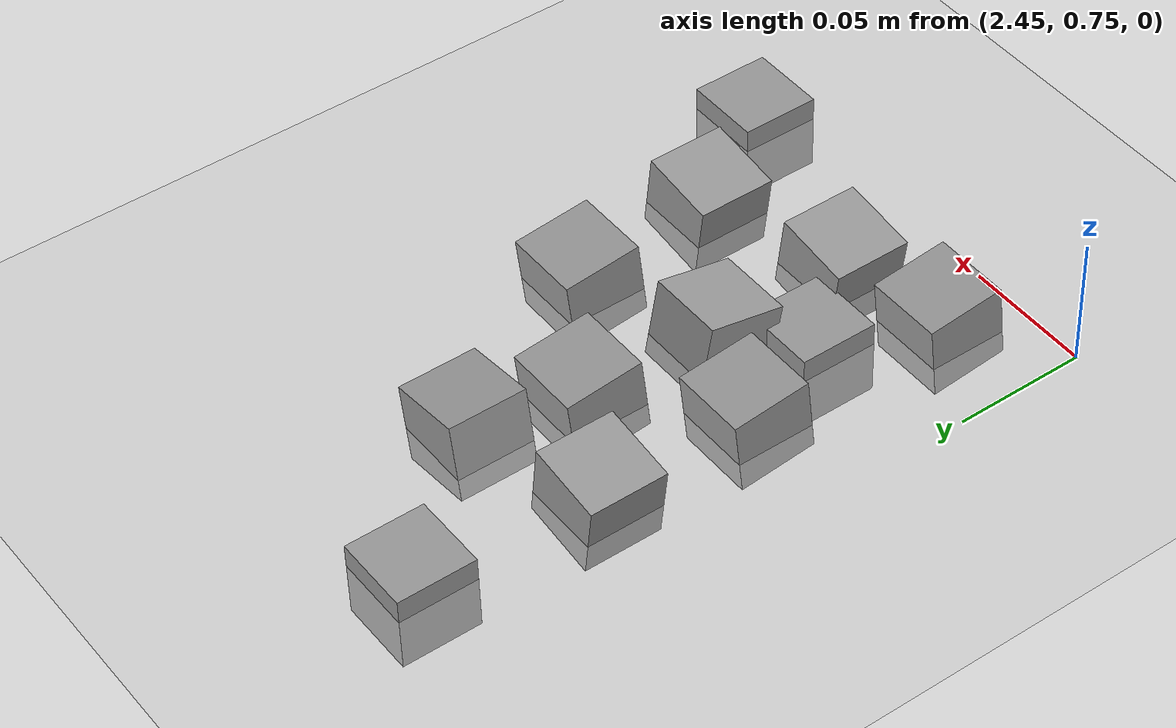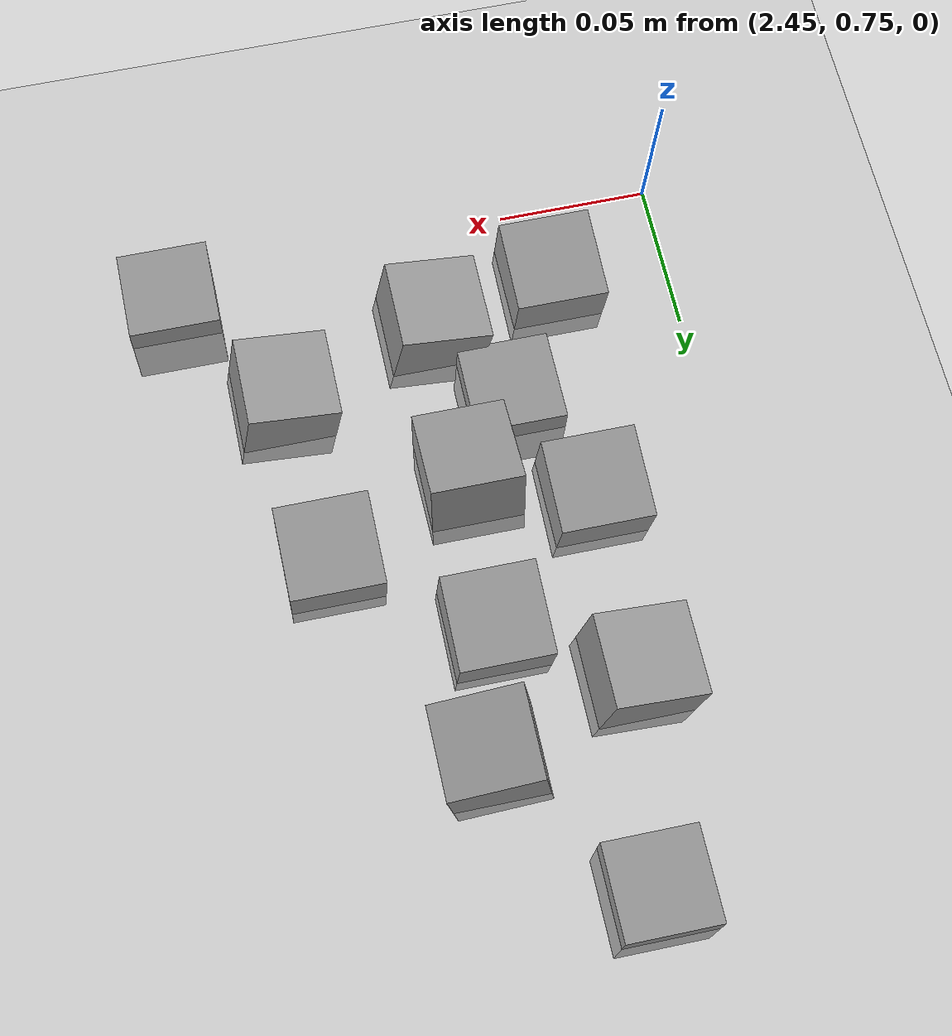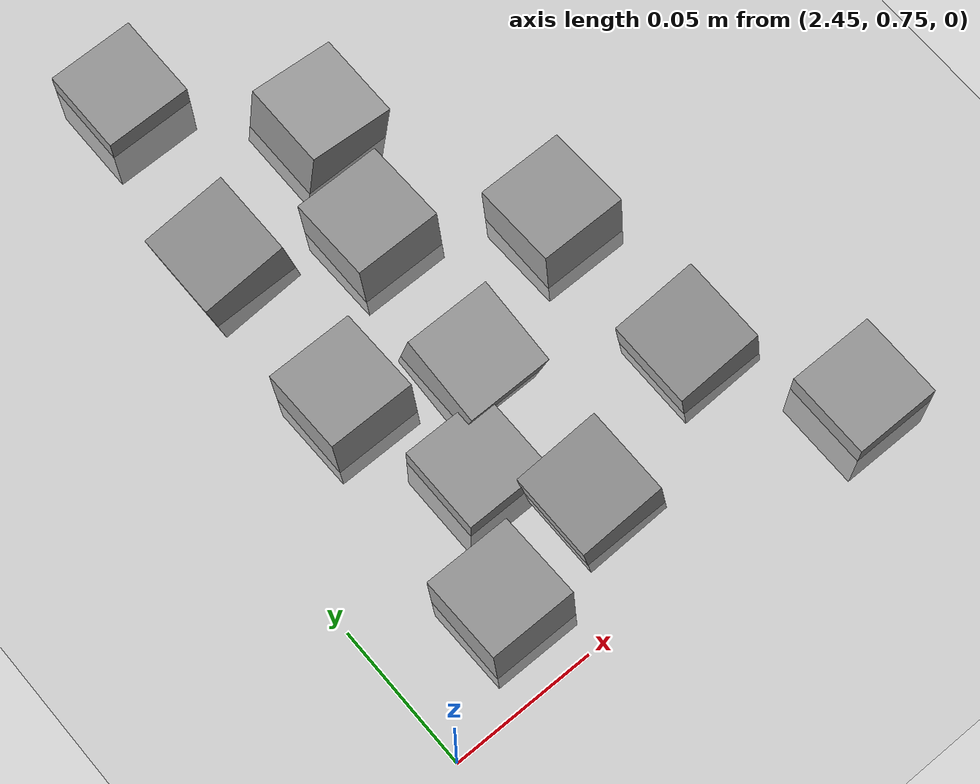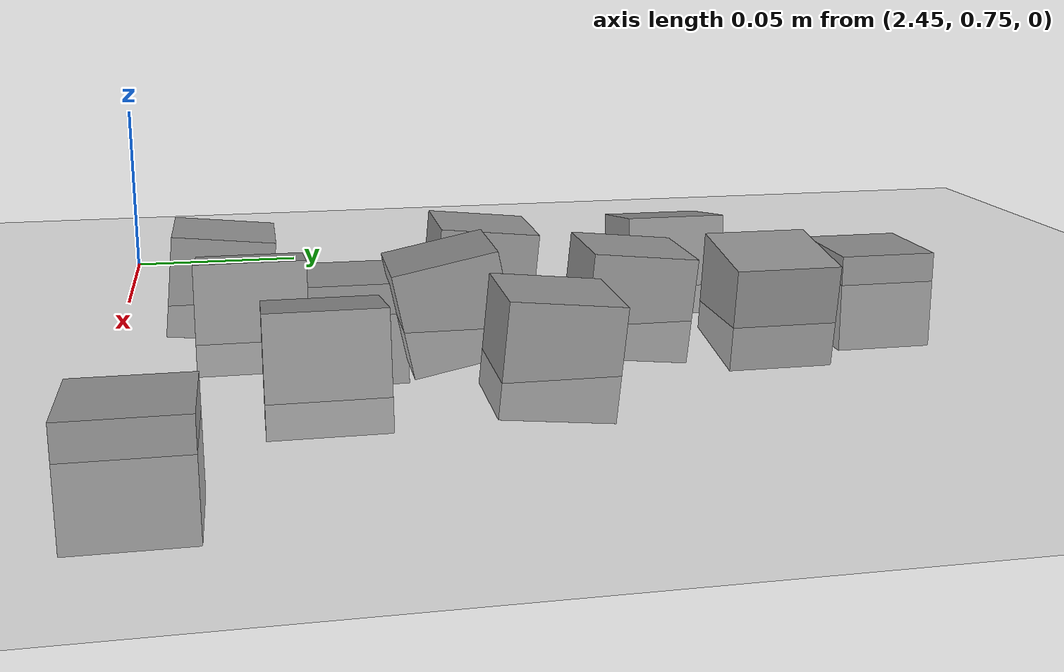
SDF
<sdf version="1.7">
 <world name="default">
  <model name="ground_plane">
   <static>1</static>
   <link name="link">
    <collision name="collision">
     <geometry><plane><normal>0 0 1</normal><size>100 100</size></plane></geometry>
     <surface><friction><ode><mu>100</mu><mu2>50</mu2></ode></friction></surface>
    </collision>
    <visual name="visual">
     <cast_shadows>0</cast_shadows>
     <geometry><plane><normal>0 0 1</normal><size>100 100</size></plane></geometry>
     <material>
      <script><uri>file://media/materials/scripts/gazebo.material</uri><name>Gazebo/Grey</name></script>
     </material>
    </visual>
   </link>
  </model>
  <model name="stone_road_8">
   <link name="link_0_clone_2_clone_2_clone">
    <inertial>
     <mass>1</mass>
     <inertia>
      <ixx>0.166667</ixx>
      <ixy>0</ixy>
      <ixz>0</ixz>
      <iyy>0.166667</iyy>
      <iyz>0</iyz>
      <izz>0.166667</izz>
     </inertia>
    </inertial>
    <pose>0.189059 0.051135 0.003778 0 -0.15 0</pose>
    <kinematic>1</kinematic>
    <visual name="visual">
     <geometry><box><size>0.03 0.03 0.03</size></box></geometry>
     <material>
      <lighting>1</lighting>
      <script><uri>file://media/materials/scripts/gazebo.material</uri><name>Gazebo/Grey</name></script>
      <shader type="pixel"><normal_map>__default__</normal_map></shader>
      <ambient>0.3 0.3 0.3 1</ambient>
      <diffuse>0.7 0.7 0.7 1</diffuse>
      <specular>0.01 0.01 0.01 1</specular>
      <emissive>0 0 0 1</emissive>
     </material>
    </visual>
    <collision name="collision">
     <geometry><box><size>0.03 0.03 0.03</size></box></geometry>
     <surface>
      <friction>
       <ode><mu>1</mu><mu2>1</mu2><fdir1>0 0 0</fdir1><slip1>0</slip1><slip2>0</slip2></ode>
       <torsional>
        <coefficient>1</coefficient>
        <patch_radius>0</patch_radius>
        <surface_radius>0</surface_radius>
        <use_patch_radius>1</use_patch_radius>
        <ode><slip>0</slip></ode>
       </torsional>
      </friction>
      <bounce><restitution_coefficient>0</restitution_coefficient><threshold>1e+06</threshold></bounce>
      <contact>
       <collide_without_contact>0</collide_without_contact>
       <collide_without_contact_bitmask>1</collide_without_contact_bitmask>
       <collide_bitmask>1</collide_bitmask>
       <ode>
        <soft_cfm>0</soft_cfm>
        <soft_erp>0.2</soft_erp>
        <kp>1e+13</kp>
        <kd>1</kd>
        <max_vel>0.01</max_vel>
        <min_depth>0</min_depth>
       </ode>
       <bullet>
        <split_impulse>1</split_impulse>
        <split_impulse_penetration_threshold>-0.01</split_impulse_penetration_threshold>
        <soft_cfm>0</soft_cfm>
        <soft_erp>0.2</soft_erp>
        <kp>1e+13</kp>
        <kd>1</kd>
       </bullet>
      </contact>
     </surface>
    </collision>
   </link>
   <link name="link_0_clone_2_clone_2_clone_10">
    <inertial>
     <mass>1</mass>
     <inertia>
      <ixx>0.166667</ixx>
      <ixy>0</ixy>
      <ixz>0</ixz>
      <iyy>0.166667</iyy>
      <iyz>0</iyz>
      <izz>0.166667</izz>
     </inertia>
    </inertial>
    <pose>0.09869 0.163436 0.003778 0 -0.15 0</pose>
    <kinematic>1</kinematic>
    <visual name="visual">
     <geometry><box><size>0.03 0.03 0.03</size></box></geometry>
     <material>
      <lighting>1</lighting>
      <script><uri>file://media/materials/scripts/gazebo.material</uri><name>Gazebo/Grey</name></script>
      <shader type="pixel"><normal_map>__default__</normal_map></shader>
      <ambient>0.3 0.3 0.3 1</ambient>
      <diffuse>0.7 0.7 0.7 1</diffuse>
      <specular>0.01 0.01 0.01 1</specular>
      <emissive>0 0 0 1</emissive>
     </material>
    </visual>
    <collision name="collision">
     <geometry><box><size>0.03 0.03 0.03</size></box></geometry>
     <surface>
      <friction>
       <ode><mu>1</mu><mu2>1</mu2><fdir1>0 0 0</fdir1><slip1>0</slip1><slip2>0</slip2></ode>
       <torsional>
        <coefficient>1</coefficient>
        <patch_radius>0</patch_radius>
        <surface_radius>0</surface_radius>
        <use_patch_radius>1</use_patch_radius>
        <ode><slip>0</slip></ode>
       </torsional>
      </friction>
      <bounce><restitution_coefficient>0</restitution_coefficient><threshold>1e+06</threshold></bounce>
      <contact>
       <collide_without_contact>0</collide_without_contact>
       <collide_without_contact_bitmask>1</collide_without_contact_bitmask>
       <collide_bitmask>1</collide_bitmask>
       <ode>
        <soft_cfm>0</soft_cfm>
        <soft_erp>0.2</soft_erp>
        <kp>1e+13</kp>
        <kd>1</kd>
        <max_vel>0.01</max_vel>
        <min_depth>0</min_depth>
       </ode>
       <bullet>
        <split_impulse>1</split_impulse>
        <split_impulse_penetration_threshold>-0.01</split_impulse_penetration_threshold>
        <soft_cfm>0</soft_cfm>
        <soft_erp>0.2</soft_erp>
        <kp>1e+13</kp>
        <kd>1</kd>
       </bullet>
      </contact>
     </surface>
    </collision>
   </link>
   <link name="link_0_clone_2_clone_2_clone_13_clone">
    <inertial>
     <mass>1</mass>
     <inertia>
      <ixx>0.166667</ixx>
      <ixy>0</ixy>
      <ixz>0</ixz>
      <iyy>0.166667</iyy>
      <iyz>0</iyz>
      <izz>0.166667</izz>
     </inertia>
    </inertial>
    <pose>0.138846 0.140956 0.003778 -0.1 0 0</pose>
    <kinematic>1</kinematic>
    <visual name="visual">
     <geometry><box><size>0.03 0.03 0.03</size></box></geometry>
     <material>
      <lighting>1</lighting>
      <script><uri>file://media/materials/scripts/gazebo.material</uri><name>Gazebo/Grey</name></script>
      <shader type="pixel"><normal_map>__default__</normal_map></shader>
      <ambient>0.3 0.3 0.3 1</ambient>
      <diffuse>0.7 0.7 0.7 1</diffuse>
      <specular>0.01 0.01 0.01 1</specular>
      <emissive>0 0 0 1</emissive>
     </material>
    </visual>
    <collision name="collision">
     <geometry><box><size>0.03 0.03 0.03</size></box></geometry>
     <surface>
      <friction>
       <ode><mu>1</mu><mu2>1</mu2><fdir1>0 0 0</fdir1><slip1>0</slip1><slip2>0</slip2></ode>
       <torsional>
        <coefficient>1</coefficient>
        <patch_radius>0</patch_radius>
        <surface_radius>0</surface_radius>
        <use_patch_radius>1</use_patch_radius>
        <ode><slip>0</slip></ode>
       </torsional>
      </friction>
      <bounce><restitution_coefficient>0</restitution_coefficient><threshold>1e+06</threshold></bounce>
      <contact>
       <collide_without_contact>0</collide_without_contact>
       <collide_without_contact_bitmask>1</collide_without_contact_bitmask>
       <collide_bitmask>1</collide_bitmask>
       <ode>
        <soft_cfm>0</soft_cfm>
        <soft_erp>0.2</soft_erp>
        <kp>1e+13</kp>
        <kd>1</kd>
        <max_vel>0.01</max_vel>
        <min_depth>0</min_depth>
       </ode>
       <bullet>
        <split_impulse>1</split_impulse>
        <split_impulse_penetration_threshold>-0.01</split_impulse_penetration_threshold>
        <soft_cfm>0</soft_cfm>
        <soft_erp>0.2</soft_erp>
        <kp>1e+13</kp>
        <kd>1</kd>
       </bullet>
      </contact>
     </surface>
    </collision>
   </link>
   <link name="link_0_clone_2_clone_2_clone_13_clone_clone">
    <inertial>
     <mass>1</mass>
     <inertia>
      <ixx>0.166667</ixx>
      <ixy>0</ixy>
      <ixz>0</ixz>
      <iyy>0.166667</iyy>
      <iyz>0</iyz>
      <izz>0.166667</izz>
     </inertia>
    </inertial>
    <pose>0.184456 0.108712 0.003778 -0.1 0 0</pose>
    <kinematic>1</kinematic>
    <visual name="visual">
     <geometry><box><size>0.03 0.03 0.03</size></box></geometry>
     <material>
      <lighting>1</lighting>
      <script><uri>file://media/materials/scripts/gazebo.material</uri><name>Gazebo/Grey</name></script>
      <shader type="pixel"><normal_map>__default__</normal_map></shader>
      <ambient>0.3 0.3 0.3 1</ambient>
      <diffuse>0.7 0.7 0.7 1</diffuse>
      <specular>0.01 0.01 0.01 1</specular>
      <emissive>0 0 0 1</emissive>
     </material>
    </visual>
    <collision name="collision">
     <geometry><box><size>0.03 0.03 0.03</size></box></geometry>
     <surface>
      <friction>
       <ode><mu>1</mu><mu2>1</mu2><fdir1>0 0 0</fdir1><slip1>0</slip1><slip2>0</slip2></ode>
       <torsional>
        <coefficient>1</coefficient>
        <patch_radius>0</patch_radius>
        <surface_radius>0</surface_radius>
        <use_patch_radius>1</use_patch_radius>
        <ode><slip>0</slip></ode>
       </torsional>
      </friction>
      <bounce><restitution_coefficient>0</restitution_coefficient><threshold>1e+06</threshold></bounce>
      <contact>
       <collide_without_contact>0</collide_without_contact>
       <collide_without_contact_bitmask>1</collide_without_contact_bitmask>
       <collide_bitmask>1</collide_bitmask>
       <ode>
        <soft_cfm>0</soft_cfm>
        <soft_erp>0.2</soft_erp>
        <kp>1e+13</kp>
        <kd>1</kd>
        <max_vel>0.01</max_vel>
        <min_depth>0</min_depth>
       </ode>
       <bullet>
        <split_impulse>1</split_impulse>
        <split_impulse_penetration_threshold>-0.01</split_impulse_penetration_threshold>
        <soft_cfm>0</soft_cfm>
        <soft_erp>0.2</soft_erp>
        <kp>1e+13</kp>
        <kd>1</kd>
       </bullet>
      </contact>
     </surface>
    </collision>
   </link>
   <link name="link_0_clone_2_clone_2_clone_13_clone_clone_0">
    <inertial>
     <mass>1</mass>
     <inertia>
      <ixx>0.166667</ixx>
      <ixy>0</ixy>
      <ixz>0</ixz>
      <iyy>0.166667</iyy>
      <iyz>0</iyz>
      <izz>0.166667</izz>
     </inertia>
    </inertial>
    <pose>0.094072 0.02539 0.003778 -0.1 0 0</pose>
    <kinematic>1</kinematic>
    <visual name="visual">
     <geometry><box><size>0.03 0.03 0.03</size></box></geometry>
     <material>
      <lighting>1</lighting>
      <script><uri>file://media/materials/scripts/gazebo.material</uri><name>Gazebo/Grey</name></script>
      <shader type="pixel"><normal_map>__default__</normal_map></shader>
      <ambient>0.3 0.3 0.3 1</ambient>
      <diffuse>0.7 0.7 0.7 1</diffuse>
      <specular>0.01 0.01 0.01 1</specular>
      <emissive>0 0 0 1</emissive>
     </material>
    </visual>
    <collision name="collision">
     <geometry><box><size>0.03 0.03 0.03</size></box></geometry>
     <surface>
      <friction>
       <ode><mu>1</mu><mu2>1</mu2><fdir1>0 0 0</fdir1><slip1>0</slip1><slip2>0</slip2></ode>
       <torsional>
        <coefficient>1</coefficient>
        <patch_radius>0</patch_radius>
        <surface_radius>0</surface_radius>
        <use_patch_radius>1</use_patch_radius>
        <ode><slip>0</slip></ode>
       </torsional>
      </friction>
      <bounce><restitution_coefficient>0</restitution_coefficient><threshold>1e+06</threshold></bounce>
      <contact>
       <collide_without_contact>0</collide_without_contact>
       <collide_without_contact_bitmask>1</collide_without_contact_bitmask>
       <collide_bitmask>1</collide_bitmask>
       <ode>
        <soft_cfm>0</soft_cfm>
        <soft_erp>0.2</soft_erp>
        <kp>1e+13</kp>
        <kd>1</kd>
        <max_vel>0.01</max_vel>
        <min_depth>0</min_depth>
       </ode>
       <bullet>
        <split_impulse>1</split_impulse>
        <split_impulse_penetration_threshold>-0.01</split_impulse_penetration_threshold>
        <soft_cfm>0</soft_cfm>
        <soft_erp>0.2</soft_erp>
        <kp>1e+13</kp>
        <kd>1</kd>
       </bullet>
      </contact>
     </surface>
    </collision>
   </link>
   <link name="link_0_clone_2_clone_2_clone_13_clone_clone_1">
    <inertial>
     <mass>1</mass>
     <inertia>
      <ixx>0.166667</ixx>
      <ixy>0</ixy>
      <ixz>0</ixz>
      <iyy>0.166667</iyy>
      <iyz>0</iyz>
      <izz>0.166667</izz>
     </inertia>
    </inertial>
    <pose>0.098415 0.103772 0.003778 -0.1 0 0</pose>
    <kinematic>1</kinematic>
    <visual name="visual">
     <geometry><box><size>0.03 0.03 0.03</size></box></geometry>
     <material>
      <lighting>1</lighting>
      <script><uri>file://media/materials/scripts/gazebo.material</uri><name>Gazebo/Grey</name></script>
      <shader type="pixel"><normal_map>__default__</normal_map></shader>
      <ambient>0.3 0.3 0.3 1</ambient>
      <diffuse>0.7 0.7 0.7 1</diffuse>
      <specular>0.01 0.01 0.01 1</specular>
      <emissive>0 0 0 1</emissive>
     </material>
    </visual>
    <collision name="collision">
     <geometry><box><size>0.03 0.03 0.03</size></box></geometry>
     <surface>
      <friction>
       <ode><mu>1</mu><mu2>1</mu2><fdir1>0 0 0</fdir1><slip1>0</slip1><slip2>0</slip2></ode>
       <torsional>
        <coefficient>1</coefficient>
        <patch_radius>0</patch_radius>
        <surface_radius>0</surface_radius>
        <use_patch_radius>1</use_patch_radius>
        <ode><slip>0</slip></ode>
       </torsional>
      </friction>
      <bounce><restitution_coefficient>0</restitution_coefficient><threshold>1e+06</threshold></bounce>
      <contact>
       <collide_without_contact>0</collide_without_contact>
       <collide_without_contact_bitmask>1</collide_without_contact_bitmask>
       <collide_bitmask>1</collide_bitmask>
       <ode>
        <soft_cfm>0</soft_cfm>
        <soft_erp>0.2</soft_erp>
        <kp>1e+13</kp>
        <kd>1</kd>
        <max_vel>0.01</max_vel>
        <min_depth>0</min_depth>
       </ode>
       <bullet>
        <split_impulse>1</split_impulse>
        <split_impulse_penetration_threshold>-0.01</split_impulse_penetration_threshold>
        <soft_cfm>0</soft_cfm>
        <soft_erp>0.2</soft_erp>
        <kp>1e+13</kp>
        <kd>1</kd>
       </bullet>
      </contact>
     </surface>
    </collision>
   </link>
   <link name="link_0_clone_2_clone_2_clone_13_clone_clone_16">
    <inertial>
     <mass>1</mass>
     <inertia>
      <ixx>0.166667</ixx>
      <ixy>0</ixy>
      <ixz>0</ixz>
      <iyy>0.166667</iyy>
      <iyz>0</iyz>
      <izz>0.166667</izz>
     </inertia>
    </inertial>
    <pose>0.108948 0.22849 -0.006222 0 -0 0</pose>
    <kinematic>1</kinematic>
    <visual name="visual">
     <geometry><box><size>0.03 0.03 0.03</size></box></geometry>
     <material>
      <lighting>1</lighting>
      <script><uri>file://media/materials/scripts/gazebo.material</uri><name>Gazebo/Grey</name></script>
      <shader type="pixel"><normal_map>__default__</normal_map></shader>
      <ambient>0.3 0.3 0.3 1</ambient>
      <diffuse>0.7 0.7 0.7 1</diffuse>
      <specular>0.01 0.01 0.01 1</specular>
      <emissive>0 0 0 1</emissive>
     </material>
    </visual>
    <collision name="collision">
     <geometry><box><size>0.03 0.03 0.03</size></box></geometry>
     <surface>
      <friction>
       <ode><mu>1</mu><mu2>1</mu2><fdir1>0 0 0</fdir1><slip1>0</slip1><slip2>0</slip2></ode>
       <torsional>
        <coefficient>1</coefficient>
        <patch_radius>0</patch_radius>
        <surface_radius>0</surface_radius>
        <use_patch_radius>1</use_patch_radius>
        <ode><slip>0</slip></ode>
       </torsional>
      </friction>
      <bounce><restitution_coefficient>0</restitution_coefficient><threshold>1e+06</threshold></bounce>
      <contact>
       <collide_without_contact>0</collide_without_contact>
       <collide_without_contact_bitmask>1</collide_without_contact_bitmask>
       <collide_bitmask>1</collide_bitmask>
       <ode>
        <soft_cfm>0</soft_cfm>
        <soft_erp>0.2</soft_erp>
        <kp>1e+13</kp>
        <kd>1</kd>
        <max_vel>0.01</max_vel>
        <min_depth>0</min_depth>
       </ode>
       <bullet>
        <split_impulse>1</split_impulse>
        <split_impulse_penetration_threshold>-0.01</split_impulse_penetration_threshold>
        <soft_cfm>0</soft_cfm>
        <soft_erp>0.2</soft_erp>
        <kp>1e+13</kp>
        <kd>1</kd>
       </bullet>
      </contact>
     </surface>
    </collision>
   </link>
   <link name="link_0_clone_2_clone_2_clone_13_clone_clone_16_clone_19">
    <inertial>
     <mass>1</mass>
     <inertia>
      <ixx>0.166667</ixx>
      <ixy>0</ixy>
      <ixz>0</ixz>
      <iyy>0.166667</iyy>
      <iyz>0</iyz>
      <izz>0.166667</izz>
     </inertia>
    </inertial>
    <pose>0.219442 0.006622 -0.006222 0 -0 0</pose>
    <kinematic>1</kinematic>
    <visual name="visual">
     <geometry><box><size>0.03 0.03 0.03</size></box></geometry>
     <material>
      <lighting>1</lighting>
      <script><uri>file://media/materials/scripts/gazebo.material</uri><name>Gazebo/Grey</name></script>
      <shader type="pixel"><normal_map>__default__</normal_map></shader>
      <ambient>0.3 0.3 0.3 1</ambient>
      <diffuse>0.7 0.7 0.7 1</diffuse>
      <specular>0.01 0.01 0.01 1</specular>
      <emissive>0 0 0 1</emissive>
     </material>
    </visual>
    <collision name="collision">
     <geometry><box><size>0.03 0.03 0.03</size></box></geometry>
     <surface>
      <friction>
       <ode><mu>1</mu><mu2>1</mu2><fdir1>0 0 0</fdir1><slip1>0</slip1><slip2>0</slip2></ode>
       <torsional>
        <coefficient>1</coefficient>
        <patch_radius>0</patch_radius>
        <surface_radius>0</surface_radius>
        <use_patch_radius>1</use_patch_radius>
        <ode><slip>0</slip></ode>
       </torsional>
      </friction>
      <bounce><restitution_coefficient>0</restitution_coefficient><threshold>1e+06</threshold></bounce>
      <contact>
       <collide_without_contact>0</collide_without_contact>
       <collide_without_contact_bitmask>1</collide_without_contact_bitmask>
       <collide_bitmask>1</collide_bitmask>
       <ode>
        <soft_cfm>0</soft_cfm>
        <soft_erp>0.2</soft_erp>
        <kp>1e+13</kp>
        <kd>1</kd>
        <max_vel>0.01</max_vel>
        <min_depth>0</min_depth>
       </ode>
       <bullet>
        <split_impulse>1</split_impulse>
        <split_impulse_penetration_threshold>-0.01</split_impulse_penetration_threshold>
        <soft_cfm>0</soft_cfm>
        <soft_erp>0.2</soft_erp>
        <kp>1e+13</kp>
        <kd>1</kd>
       </bullet>
      </contact>
     </surface>
    </collision>
   </link>
   <link name="link_0_clone_2_clone_2_clone_13_clone_clone_16_clone_20">
    <inertial>
     <mass>1</mass>
     <inertia>
      <ixx>0.166667</ixx>
      <ixy>0</ixy>
      <ixz>0</ixz>
      <iyy>0.166667</iyy>
      <iyz>0</iyz>
      <izz>0.166667</izz>
     </inertia>
    </inertial>
    <pose>0.115763 0.063063 -0.006222 0 -0 0</pose>
    <kinematic>1</kinematic>
    <visual name="visual">
     <geometry><box><size>0.03 0.03 0.03</size></box></geometry>
     <material>
      <lighting>1</lighting>
      <script><uri>file://media/materials/scripts/gazebo.material</uri><name>Gazebo/Grey</name></script>
      <shader type="pixel"><normal_map>__default__</normal_map></shader>
      <ambient>0.3 0.3 0.3 1</ambient>
      <diffuse>0.7 0.7 0.7 1</diffuse>
      <specular>0.01 0.01 0.01 1</specular>
      <emissive>0 0 0 1</emissive>
     </material>
    </visual>
    <collision name="collision">
     <geometry><box><size>0.03 0.03 0.03</size></box></geometry>
     <surface>
      <friction>
       <ode><mu>1</mu><mu2>1</mu2><fdir1>0 0 0</fdir1><slip1>0</slip1><slip2>0</slip2></ode>
       <torsional>
        <coefficient>1</coefficient>
        <patch_radius>0</patch_radius>
        <surface_radius>0</surface_radius>
        <use_patch_radius>1</use_patch_radius>
        <ode><slip>0</slip></ode>
       </torsional>
      </friction>
      <bounce><restitution_coefficient>0</restitution_coefficient><threshold>1e+06</threshold></bounce>
      <contact>
       <collide_without_contact>0</collide_without_contact>
       <collide_without_contact_bitmask>1</collide_without_contact_bitmask>
       <collide_bitmask>1</collide_bitmask>
       <ode>
        <soft_cfm>0</soft_cfm>
        <soft_erp>0.2</soft_erp>
        <kp>1e+13</kp>
        <kd>1</kd>
        <max_vel>0.01</max_vel>
        <min_depth>0</min_depth>
       </ode>
       <bullet>
        <split_impulse>1</split_impulse>
        <split_impulse_penetration_threshold>-0.01</split_impulse_penetration_threshold>
        <soft_cfm>0</soft_cfm>
        <soft_erp>0.2</soft_erp>
        <kp>1e+13</kp>
        <kd>1</kd>
       </bullet>
      </contact>
     </surface>
    </collision>
   </link>
   <link name="link_0_clone_2_clone_2_clone_6">
    <inertial>
     <mass>1</mass>
     <inertia>
      <ixx>0.166667</ixx>
      <ixy>0</ixy>
      <ixz>0</ixz>
      <iyy>0.166667</iyy>
      <iyz>0</iyz>
      <izz>0.166667</izz>
     </inertia>
    </inertial>
    <pose>0.136141 0.034017 0.003778 0 -0.15 0</pose>
    <kinematic>1</kinematic>
    <visual name="visual">
     <geometry><box><size>0.03 0.03 0.03</size></box></geometry>
     <material>
      <lighting>1</lighting>
      <script><uri>file://media/materials/scripts/gazebo.material</uri><name>Gazebo/Grey</name></script>
      <shader type="pixel"><normal_map>__default__</normal_map></shader>
      <ambient>0.3 0.3 0.3 1</ambient>
      <diffuse>0.7 0.7 0.7 1</diffuse>
      <specular>0.01 0.01 0.01 1</specular>
      <emissive>0 0 0 1</emissive>
     </material>
    </visual>
    <collision name="collision">
     <geometry><box><size>0.03 0.03 0.03</size></box></geometry>
     <surface>
      <friction>
       <ode><mu>1</mu><mu2>1</mu2><fdir1>0 0 0</fdir1><slip1>0</slip1><slip2>0</slip2></ode>
       <torsional>
        <coefficient>1</coefficient>
        <patch_radius>0</patch_radius>
        <surface_radius>0</surface_radius>
        <use_patch_radius>1</use_patch_radius>
        <ode><slip>0</slip></ode>
       </torsional>
      </friction>
      <bounce><restitution_coefficient>0</restitution_coefficient><threshold>1e+06</threshold></bounce>
      <contact>
       <collide_without_contact>0</collide_without_contact>
       <collide_without_contact_bitmask>1</collide_without_contact_bitmask>
       <collide_bitmask>1</collide_bitmask>
       <ode>
        <soft_cfm>0</soft_cfm>
        <soft_erp>0.2</soft_erp>
        <kp>1e+13</kp>
        <kd>1</kd>
        <max_vel>0.01</max_vel>
        <min_depth>0</min_depth>
       </ode>
       <bullet>
        <split_impulse>1</split_impulse>
        <split_impulse_penetration_threshold>-0.01</split_impulse_penetration_threshold>
        <soft_cfm>0</soft_cfm>
        <soft_erp>0.2</soft_erp>
        <kp>1e+13</kp>
        <kd>1</kd>
       </bullet>
      </contact>
     </surface>
    </collision>
   </link>
   <link name="link_0_clone_2_clone_9">
    <inertial>
     <mass>1</mass>
     <inertia>
      <ixx>0.166667</ixx>
      <ixy>0</ixy>
      <ixz>0</ixz>
      <iyy>0.166667</iyy>
      <iyz>0</iyz>
      <izz>0.166667</izz>
     </inertia>
    </inertial>
    <pose>0.148876 0.179752 0.003778 0 0.15 0</pose>
    <kinematic>1</kinematic>
    <visual name="visual">
     <geometry><box><size>0.03 0.03 0.03</size></box></geometry>
     <material>
      <lighting>1</lighting>
      <script><uri>file://media/materials/scripts/gazebo.material</uri><name>Gazebo/Grey</name></script>
      <shader type="pixel"><normal_map>__default__</normal_map></shader>
      <ambient>0.3 0.3 0.3 1</ambient>
      <diffuse>0.7 0.7 0.7 1</diffuse>
      <specular>0.01 0.01 0.01 1</specular>
      <emissive>0 0 0 1</emissive>
     </material>
    </visual>
    <collision name="collision">
     <geometry><box><size>0.03 0.03 0.03</size></box></geometry>
     <surface>
      <friction>
       <ode><mu>1</mu><mu2>1</mu2><fdir1>0 0 0</fdir1><slip1>0</slip1><slip2>0</slip2></ode>
       <torsional>
        <coefficient>1</coefficient>
        <patch_radius>0</patch_radius>
        <surface_radius>0</surface_radius>
        <use_patch_radius>1</use_patch_radius>
        <ode><slip>0</slip></ode>
       </torsional>
      </friction>
      <bounce><restitution_coefficient>0</restitution_coefficient><threshold>1e+06</threshold></bounce>
      <contact>
       <collide_without_contact>0</collide_without_contact>
       <collide_without_contact_bitmask>1</collide_without_contact_bitmask>
       <collide_bitmask>1</collide_bitmask>
       <ode>
        <soft_cfm>0</soft_cfm>
        <soft_erp>0.2</soft_erp>
        <kp>1e+13</kp>
        <kd>1</kd>
        <max_vel>0.01</max_vel>
        <min_depth>0</min_depth>
       </ode>
       <bullet>
        <split_impulse>1</split_impulse>
        <split_impulse_penetration_threshold>-0.01</split_impulse_penetration_threshold>
        <soft_cfm>0</soft_cfm>
        <soft_erp>0.2</soft_erp>
        <kp>1e+13</kp>
        <kd>1</kd>
       </bullet>
      </contact>
     </surface>
    </collision>
   </link>
   <link name="link_0_clone_8">
    <inertial>
     <mass>1</mass>
     <inertia>
      <ixx>0.166667</ixx>
      <ixy>0</ixy>
      <ixz>0</ixz>
      <iyy>0.166667</iyy>
      <iyz>0</iyz>
      <izz>0.166667</izz>
     </inertia>
    </inertial>
    <pose>0.135749 0.089175 0.003778 0.2 -0 0</pose>
    <kinematic>1</kinematic>
    <visual name="visual">
     <geometry><box><size>0.03 0.03 0.03</size></box></geometry>
     <material>
      <lighting>1</lighting>
      <script><uri>file://media/materials/scripts/gazebo.material</uri><name>Gazebo/Grey</name></script>
      <shader type="pixel"><normal_map>__default__</normal_map></shader>
      <ambient>0.3 0.3 0.3 1</ambient>
      <diffuse>0.7 0.7 0.7 1</diffuse>
      <specular>0.01 0.01 0.01 1</specular>
      <emissive>0 0 0 1</emissive>
     </material>
    </visual>
    <collision name="collision">
     <geometry><box><size>0.03 0.03 0.03</size></box></geometry>
     <surface>
      <friction>
       <ode><mu>1</mu><mu2>1</mu2><fdir1>0 0 0</fdir1><slip1>0</slip1><slip2>0</slip2></ode>
       <torsional>
        <coefficient>1</coefficient>
        <patch_radius>0</patch_radius>
        <surface_radius>0</surface_radius>
        <use_patch_radius>1</use_patch_radius>
        <ode><slip>0</slip></ode>
       </torsional>
      </friction>
      <bounce><restitution_coefficient>0</restitution_coefficient><threshold>1e+06</threshold></bounce>
      <contact>
       <collide_without_contact>0</collide_without_contact>
       <collide_without_contact_bitmask>1</collide_without_contact_bitmask>
       <collide_bitmask>1</collide_bitmask>
       <ode>
        <soft_cfm>0</soft_cfm>
        <soft_erp>0.2</soft_erp>
        <kp>1e+13</kp>
        <kd>1</kd>
        <max_vel>0.01</max_vel>
        <min_depth>0</min_depth>
       </ode>
       <bullet>
        <split_impulse>1</split_impulse>
        <split_impulse_penetration_threshold>-0.01</split_impulse_penetration_threshold>
        <soft_cfm>0</soft_cfm>
        <soft_erp>0.2</soft_erp>
        <kp>1e+13</kp>
        <kd>1</kd>
       </bullet>
      </contact>
     </surface>
    </collision>
   </link>
   <static>0</static>
   <pose>2.39572 0.751546 -0 0 -0 0</pose>
  </model>
 </world>
</sdf>
